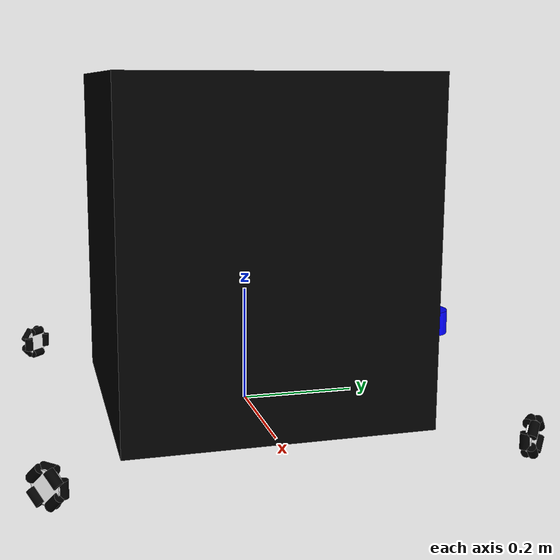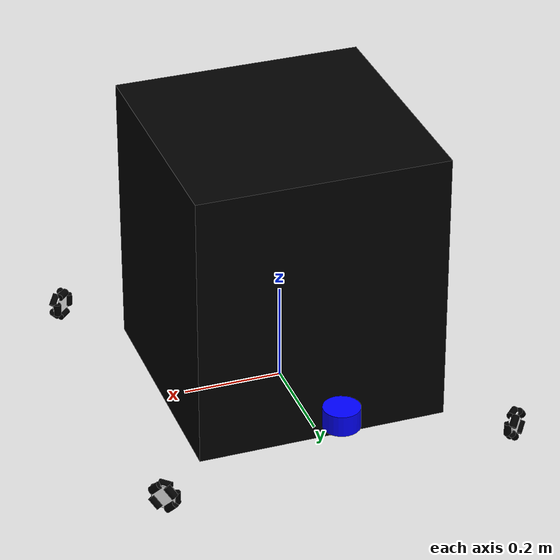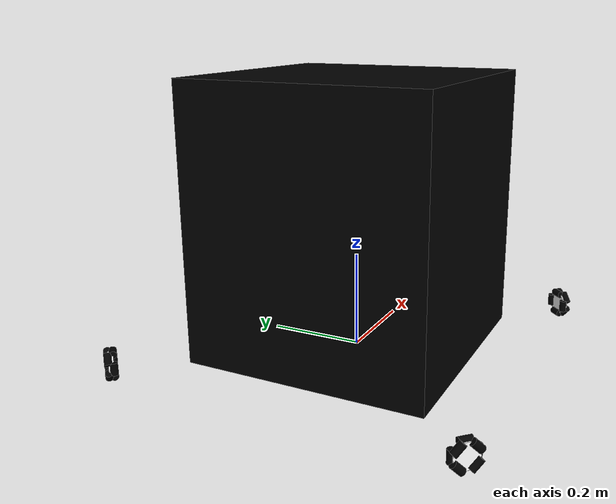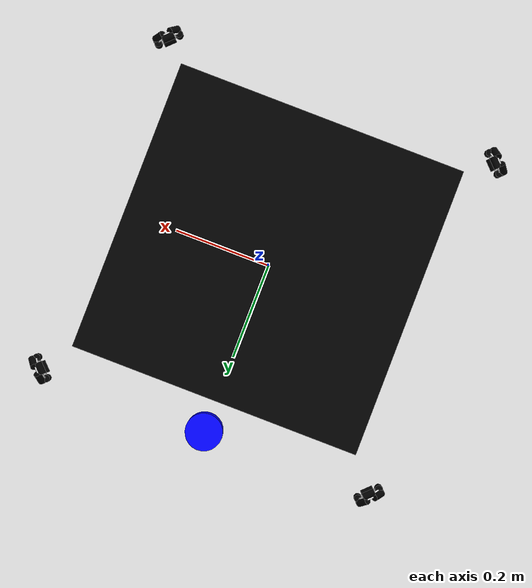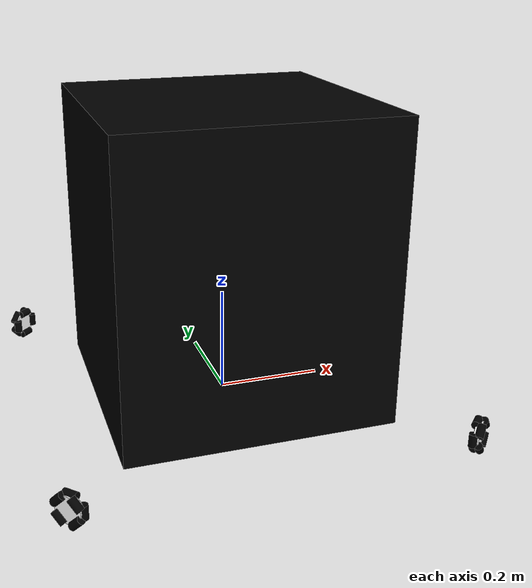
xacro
<?xml version="1.0" encoding="UTF-8"?>
<robot name="tsuten" xmlns:xacro="http://ros.org/wiki/xacro">
  <xacro:include filename="$(find tsuten_description)/urdf/lidar.urdf.xacro" />
  <xacro:include filename="$(find tsuten_description)/urdf/material.urdf.xacro" />
  <xacro:include filename="$(find tsuten_description)/urdf/omni_wheel.urdf.xacro" />
  <xacro:property name="body_size_x" value="503.0e-3" />
  <xacro:property name="body_size_y" value="503.0e-3" />
  <xacro:property name="body_size_z" value="564.0e-3" />
  <xacro:property name="body_joint_z" value="292.306e-3" />
  <xacro:property name="body_mass" value="29991.163e-3" />
  <xacro:property name="omni_wheel_x" value="355.8e-3" />
  <xacro:property name="omni_wheel_y" value="359.8e-3" />
  <xacro:property name="omni_wheel_z" value="-262.8e-3" />

  <link name="base_link" />
  <link name="body_link">
    <visual>
      <geometry>
        <box size="${body_size_x} ${body_size_y} ${body_size_z}" />
      </geometry>
      <material name="Black" />
    </visual>
    <collision>
      <geometry>
        <box size="${body_size_x} ${body_size_y} ${body_size_z}" />
      </geometry>
    </collision>
    <inertial>
      <origin xyz="0 0 0" />
      <mass value="${body_mass}" />
      <inertia ixx="${body_mass*(body_size_y**2+body_size_z**2)/12}" ixy="0" ixz="0"
        iyy="${body_mass*(body_size_z**2+body_size_x**2)/12}" iyz="0"
        izz="${body_mass*(body_size_x**2+body_size_y**2)/12}" />
    </inertial>
  </link>
  <joint name="body_joint" type="fixed">
    <origin xyz="0 0 ${body_joint_z}" rpy="0 0 0" />
    <axis xyz="0 0 1" />
    <parent link="base_link" />
    <child link="body_link" />
  </joint>

  <xacro:omni_wheel prefix="rf" parent="body_link">
    <origin xyz="${omni_wheel_x} ${omni_wheel_y} ${omni_wheel_z}"
      rpy="${radians(45)} ${radians(-90)} 0" />
  </xacro:omni_wheel>
  <xacro:omni_wheel prefix="lf" parent="body_link">
    <origin xyz="-${omni_wheel_x} ${omni_wheel_y} ${omni_wheel_z}"
      rpy="${radians(45)} ${radians(90)} 0" />
  </xacro:omni_wheel>
  <xacro:omni_wheel prefix="lb" parent="body_link">
    <origin xyz="-${omni_wheel_x} -${omni_wheel_y} ${omni_wheel_z}"
      rpy="${radians(-45)} ${radians(90)} 0" />
  </xacro:omni_wheel>
  <xacro:omni_wheel prefix="rb" parent="body_link">
    <origin xyz="${omni_wheel_x} -${omni_wheel_y} ${omni_wheel_z}"
      rpy="${radians(-45)} ${radians(-90)} 0" />
  </xacro:omni_wheel>

  <xacro:lidar parent="body_link">
    <origin xyz="0 349.5e-3 -171.5e-3" rpy="0 0 ${radians(90)}" />
  </xacro:lidar>

  <gazebo reference="body_link">
    <material>
      Gazebo/Black</material>
    <mu1 value="1" />
    <mu2 value="1" />
  </gazebo>

  <gazebo>
    <plugin name="gazebo_ros_control" filename="libgazebo_ros_control.so" />
    <plugin name="joint_state_publisher" filename="libgazebo_ros_joint_state_publisher.so">
      <jointName>
        rf_wheel_joint,
        lf_wheel_joint,
        lb_wheel_joint,
        rb_wheel_joint,
        rf_front_barrel_1_joint,
        rf_front_barrel_2_joint,
        rf_front_barrel_3_joint,
        rf_front_barrel_4_joint,
        rf_back_barrel_1_joint,
        rf_back_barrel_2_joint,
        rf_back_barrel_3_joint,
        rf_back_barrel_4_joint,
        lf_front_barrel_1_joint,
        lf_front_barrel_2_joint,
        lf_front_barrel_3_joint,
        lf_front_barrel_4_joint,
        lf_back_barrel_1_joint,
        lf_back_barrel_2_joint,
        lf_back_barrel_3_joint,
        lf_back_barrel_4_joint,
        lb_front_barrel_1_joint,
        lb_front_barrel_2_joint,
        lb_front_barrel_3_joint,
        lb_front_barrel_4_joint,
        lb_back_barrel_1_joint,
        lb_back_barrel_2_joint,
        lb_back_barrel_3_joint,
        lb_back_barrel_4_joint,
        rb_front_barrel_1_joint,
        rb_front_barrel_2_joint,
        rb_front_barrel_3_joint,
        rb_front_barrel_4_joint,
        rb_back_barrel_1_joint,
        rb_back_barrel_2_joint,
        rb_back_barrel_3_joint,
        rb_back_barrel_4_joint
      </jointName>
      <updateRate>
        100.0</updateRate>
    </plugin>
    <plugin name="gazebo_ros_p3d" filename="libgazebo_ros_p3d.so">
      <frameName>map</frameName>
      <bodyName>base_link</bodyName>
      <topicName>odom</topicName>
      <updateRate>100.0</updateRate>
    </plugin>
  </gazebo>
</robot>

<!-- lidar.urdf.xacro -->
<robot xmlns:xacro="http://ros.org/wiki/xacro">
  <xacro:macro name="lidar" params="parent *joint_origin">
    <xacro:property name="radius" value="0.037" />
    <xacro:property name="length" value="0.043" />
    <xacro:property name="mass" value="0.2" />
    <xacro:property name="visualize" value="true" />
    <xacro:property name="view_angle" value="220" />
    <xacro:property name="min_range" value="0.12" />
    <xacro:property name="max_range" value="12" />

    <link name="lidar_link">
      <visual>
        <geometry>
          <cylinder radius="${radius}" length="${length}" />
        </geometry>
        <material name="Blue" />
      </visual>
      <inertial>
        <origin xyz="0 0 0" />
        <mass value="${mass}" />
        <inertia ixx="${mass*(radius**2/4+length**2/12)}" ixy="0" ixz="0"
          iyy="${mass*(radius**2/4+length**2/12)}" iyz="0"
          izz="${mass*radius**2/2}" />
      </inertial>
    </link>
    <joint name="lidar_joint" type="fixed">
      <xacro:insert_block name="joint_origin" />
      <parent link="${parent}" />
      <child link="lidar_link" />
    </joint>
    <gazebo reference="lidar_link">
      <material>Gazebo/Blue</material>
      <sensor type="ray" name="lidar">
        <pose>0 0 0 0 0 0</pose>
        <visualize>${visualize}</visualize>
        <update_rate>10</update_rate>
        <ray>
          <scan>
            <horizontal>
              <samples>720</samples>
              <resolution>1</resolution>
              <min_angle>${radians(-view_angle/2)}</min_angle>
              <max_angle>${radians(view_angle/2)}</max_angle>
            </horizontal>
          </scan>
          <range>
            <min>${min_range}</min>
            <max>${max_range}</max>
            <resolution>0.01</resolution>
          </range>
        </ray>
        <plugin name="gazebo_ros_lidar_controller" filename="libgazebo_ros_laser.so">
          <topicName>/lidar/scan</topicName>
          <frameName>lidar_link</frameName>
        </plugin>
      </sensor>
    </gazebo>
  </xacro:macro>
</robot>

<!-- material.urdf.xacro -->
<robot xmlns:xacro="http://ros.org/wiki/xacro">
  <material name="Red">
    <color rgba="1.0 0.0 0.0 1.0" />
  </material>
  <material name="Green">
    <color rgba="0.0 1.0 0.0 1.0" />
  </material>
  <material name="Blue">
    <color rgba="0.0 0.0 1.0 1.0" />
  </material>
  <material name="Orange">
    <color rgba="1.0 0.6 0.0 1.0" />
  </material>
  <material name="Grey">
    <color rgba="0.5 0.5 0.5 1.0" />
  </material>
  <material name="Yellow">
    <color rgba="1.0 1.0 0.2 1.0" />
  </material>
  <material name="Black">
    <color rgba="0.0 0.0 0.0 1.0" />
  </material>
  <material name="White">
    <color rgba="1.0 1.0 1.0 1.0" />
  </material>
</robot>

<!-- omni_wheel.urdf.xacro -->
<robot xmlns:xacro="http://ros.org/wiki/xacro">
  <xacro:property name="omni_wheel_mass" value="350.0e-3" />
  <xacro:property name="wheel_radius" value="25.0e-3" />
  <xacro:property name="wheel_length" value="10.0e-3" />
  <xacro:property name="wheel_mass" value="50.0e-3" />
  <xacro:property name="number_of_barrels" value="8" />
  <xacro:property name="barrel_radius" value="7.50e-3" />
  <xacro:property name="barrel_length" value="25.0e-3" />
  <xacro:property name="barrel_loop_radius" value="23.1e-3" />
  <xacro:property name="barrel_mass" value="${(omni_wheel_mass-wheel_mass)/number_of_barrels}" />

  <xacro:macro name="rotor"
    params="prefix parent radius length mass color damping_factor *joint_origin">
    <link name="${prefix}_link">
      <visual>
        <geometry>
          <cylinder radius="${radius}" length="${length}" />
        </geometry>
        <material name="${color}" />
      </visual>
      <collision>
        <geometry>
          <cylinder radius="${radius}" length="${length}" />
        </geometry>
      </collision>
      <inertial>
        <origin xyz="0 0 0" />
        <mass value="${mass}" />
        <inertia ixx="${mass*(radius**2/4+length**2/12)}" ixy="0" ixz="0"
          iyy="${mass*(radius**2/4+length**2/12)}" iyz="0"
          izz="${mass*radius**2/2}" />
      </inertial>
    </link>
    <joint name="${prefix}_joint" type="continuous">
      <xacro:insert_block name="joint_origin" />
      <axis xyz="0 0 1" />
      <parent link="${parent}" />
      <child link="${prefix}_link" />
    </joint>

    <gazebo reference="${prefix}_link">
      <material>
        Gazebo/${color}</material>
      <mu1 value="10000" />
      <mu2 value="10000" />
      <kp value="1000000" />
      <kd value="100000" />
      <dampingFactor value="${damping_factor}" />
    </gazebo>
  </xacro:macro>

  <xacro:macro name="barrel_loop" params="prefix parent n r z t_0 i">
    <xacro:property name="dt" value="${2*pi/n}" />
    <xacro:rotor prefix="${prefix}_barrel_${n-i}" parent="${parent}" radius="${barrel_radius}"
      length="${barrel_length}" mass="${barrel_mass}" color="Black" damping_factor="0.1">
      <origin xyz="${r*cos((n-i-1)*dt + t_0)} ${r*sin((n-i-1)*dt + t_0)} ${z}"
        rpy="${pi/2} 0 ${(n-i-1)*dt + t_0}" />
    </xacro:rotor>
    <xacro:if value="${i}">
      <xacro:barrel_loop prefix="${prefix}" parent="${parent}" n="${n}" r="${r}" z="${z}"
        t_0="${t_0}" i="${i-1}" />
    </xacro:if>
  </xacro:macro>

  <xacro:macro name="omni_wheel" params="prefix parent *joint_origin">
    <xacro:rotor prefix="${prefix}_wheel" parent="${parent}" radius="${wheel_radius}"
      length="${wheel_length}" mass="${wheel_mass}" color="White" damping_factor="0.3">
      <xacro:insert_block name="joint_origin" />
    </xacro:rotor>

    <xacro:barrel_loop prefix="${prefix}_front" parent="${prefix}_wheel_link"
      n="${number_of_barrels//2}"
      r="${barrel_loop_radius}"
      z="${wheel_length/2}" t_0="0" i="${number_of_barrels//2-1}" />
    <xacro:barrel_loop prefix="${prefix}_back" parent="${prefix}_wheel_link"
      n="${number_of_barrels//2}"
      r="${barrel_loop_radius}"
      z="-${wheel_length/2}" t_0="${2*pi/(number_of_barrels/2)/2}" i="${number_of_barrels//2-1}" />

    <transmission name="${prefix}_wheel_trans">
      <type>
        transmission_interface/SimpleTransmission</type>
      <joint name="${prefix}_wheel_joint">
        <hardwareInterface>hardware_interface/VelocityJointInterface</hardwareInterface>
      </joint>
      <actuator name="${prefix}_wheel_motor">
        <hardwareInterface>
          hardware_interface/VelocityJointInterface</hardwareInterface>
        <mechanicalReduction>1</mechanicalReduction>
      </actuator>
    </transmission>
  </xacro:macro>
</robot>
